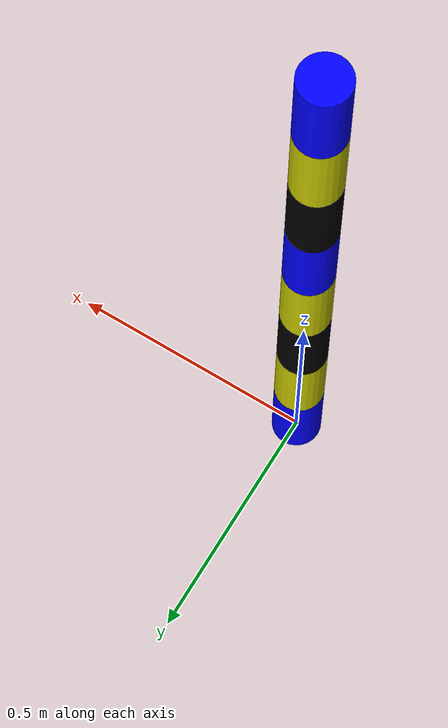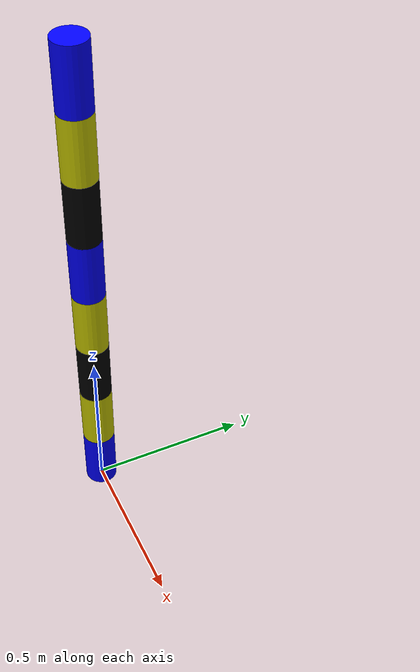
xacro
<?xml version="1.0"?>

<robot name="robot_kuka" xmlns:xacro="http://wiki.ros.org/xacro">
    <xacro:include filename="$(find esercizio5)/urdf/robot_kuka_macro.xacro" />

<xacro:kuka_link
            name="link1">
            <geometry>
                <cylinder length="0.2" radius="0.05"/>
            </geometry>
            <origin xyz="0 0 0.1" rpy="0 0 0"/>
        <material name="blue">
              <color rgba="0 0 1 1"/>
            </material>
</xacro:kuka_link>

<xacro:kuka_joint
            name="joint1"
            type="revolute"
            parent="link1"
            child="link2">
            <origin xyz="0 0 0.2" />
            <axis xyz="0 0 1"/>
       <limit effort="176" velocity="0.1" lower="-2.96" upper="2.96"/>

</xacro:kuka_joint>

<xacro:kuka_link
            name="link2">
            <geometry>
                <cylinder length="0.2" radius="0.05"/>
            </geometry>

            <origin xyz="0 0 0.1" rpy="0 0 0"/>
        <material name="yellow">
              <color rgba="0.8 0.8 0 1"/>
            </material>
</xacro:kuka_link>

<xacro:kuka_joint
            name="joint2"
            type="revolute"
            parent="link2"
            child="link3">
            <origin xyz="0 0 0.2" />
            <axis xyz="0 1 0"/>
 <limit effort="176" velocity="0.1" lower="-2.06" upper="2.06"/>
</xacro:kuka_joint>

<xacro:kuka_link
            name="link3">
            <geometry>
                <cylinder length="0.2" radius="0.05"/>
            </geometry>

            <origin xyz="0 0 0.1" rpy="0 0 0"/>
        <material name="black">
              <color rgba="0 0 0 1"/>
            </material>
</xacro:kuka_link>

<xacro:kuka_joint
            name="joint3"
            type="revolute"
            parent="link3"
            child="link4">
            <origin xyz="0 0 0.2" />
            <axis xyz="0 0 1"/>
 <limit effort="110" velocity="0.1" lower="-2.96" upper="2.96"/>
</xacro:kuka_joint>

<xacro:kuka_link
            name="link4">
            <geometry>
                <cylinder length="0.2" radius="0.05"/>
            </geometry>

            <origin xyz="0 0 0.1" rpy="0 0 0"/>
        <material name="yellow">
              <color rgba="0.8 0.8 0 1"/>
            </material>
</xacro:kuka_link>

<xacro:kuka_joint
            name="joint4"
            type="revolute"
            parent="link4"
            child="link5">
            <origin xyz="0 0 0.2" />
            <axis xyz="0 -1 0"/>
 <limit effort="110" velocity="0.1" lower="-2.09" upper="2.09"/>
</xacro:kuka_joint>

<xacro:kuka_link
            name="link5">
            <geometry>
                <cylinder length="0.2" radius="0.05"/>
            </geometry>

            <origin xyz="0 0 0.1" rpy="0 0 0"/>
        <material name="blue">
              <color rgba="0 0 1 1"/>
            </material>
</xacro:kuka_link>

<xacro:kuka_joint
            name="joint5"
            type="revolute"
            parent="link5"
            child="link6">
            <origin xyz="0 0 0.2" />
            <axis xyz="0 0 1"/>
 <limit effort="110" velocity="0.1" lower="-2.96" upper="2.96"/>
</xacro:kuka_joint>

<xacro:kuka_link
            name="link6">
            <geometry>
                <cylinder length="0.2" radius="0.05"/>
            </geometry>

            <origin xyz="0 0 0.1" rpy="0 0 0"/>
        <material name="black">
              <color rgba="0 0 0 1"/>
            </material>
</xacro:kuka_link>

<xacro:kuka_joint
            name="joint6"
            type="revolute"
            parent="link6"
            child="link7">
            <origin xyz="0 0 0.2" />
            <axis xyz="0 1 0"/>
 <limit effort="40" velocity="0.1" lower="-2.09" upper="2.09"/>
</xacro:kuka_joint>

<xacro:kuka_link
            name="link7">
            <geometry>
                <cylinder length="0.2" radius="0.05"/>
            </geometry>

            <origin xyz="0 0 0.1" rpy="0 0 0"/>
        <material name="yellow">
              <color rgba="0.8 0.8 0 1"/>
            </material>
</xacro:kuka_link>

<xacro:kuka_joint
            name="joint7"
            type="revolute"
            parent="link7"
            child="end_effector">
            <origin xyz="0 0 0.2" />
            <axis xyz="0 0 1"/>
 <limit effort="40" velocity="0.1" lower="-3.05" upper="3.05"/>
</xacro:kuka_joint>

<xacro:kuka_link
            name="end_effector">
            <geometry>
                <cylinder length="0.2" radius="0.05"/>
            </geometry>

            <origin xyz="0 0 0.1" rpy="0 0 0"/>
        <material name="blue">
              <color rgba="0 0 1 1"/>
            </material>
</xacro:kuka_link>

</robot>

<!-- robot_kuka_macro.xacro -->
<robot name="robot_kuka_macro" xmlns:xacro="http://wiki.ros.org/xacro">

	<xacro:macro name="kuka_link" params="name *geometry *origin *material">
		<link name="${name}">
			<visual>
				<xacro:insert_block name="geometry" />
				<xacro:insert_block name="origin" />
                                <xacro:insert_block name="material" />

		  </visual>

		  <collision>
				<xacro:insert_block name="geometry" />
				<xacro:insert_block name="origin" />
			</collision>

			<inertial>
				<mass value="1"/>
					<inertia ixx="1.0" ixy="0.0" ixz="0.0" iyy="1.0" iyz="0.0" izz="1.0"/>
		  </inertial>
	  </link>

	</xacro:macro>

	<xacro:macro name="kuka_joint" params="name type parent child *origin *axis *limits">
		<joint name="${name}" type="${type}">
			<parent link="${parent}" />
			<child link="${child}" />
	   			<xacro:insert_block name="origin" />
				<xacro:insert_block name="axis" />
                                <xacro:insert_block name="limits" />

	    <dynamics damping="50" friction="1"/>
		</joint>
	</xacro:macro>

</robot>
